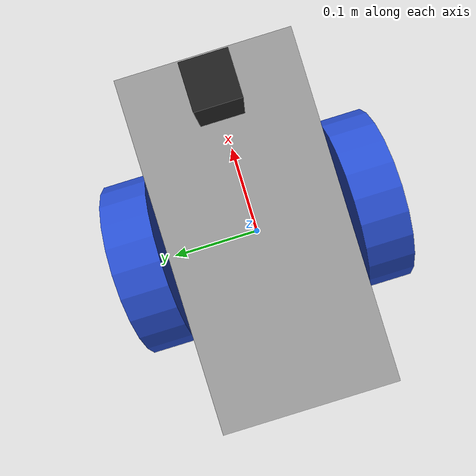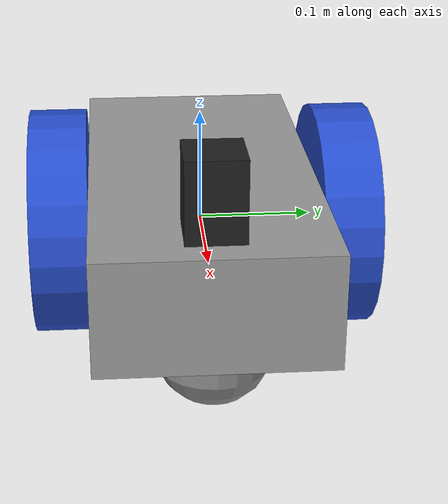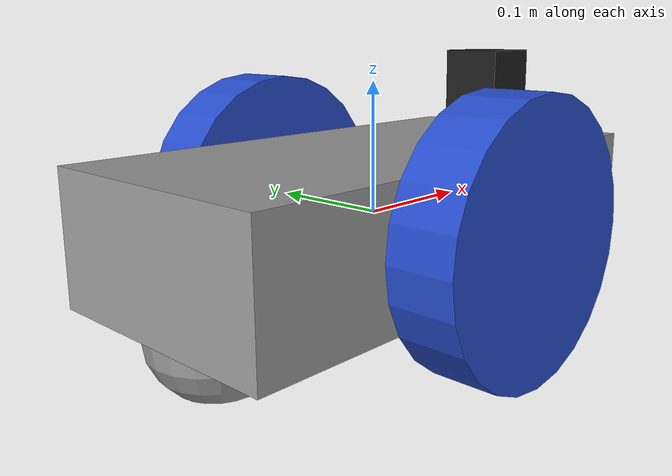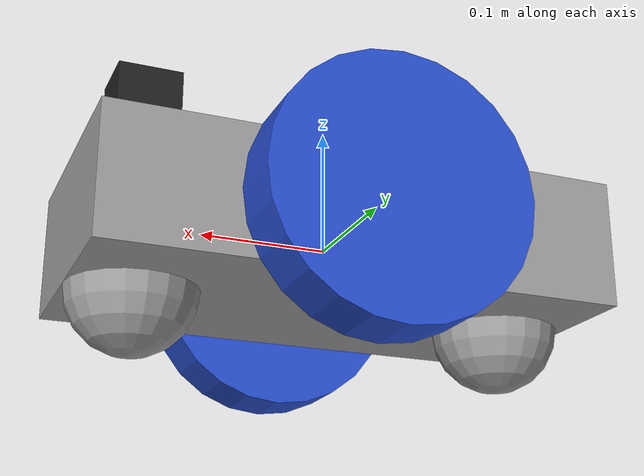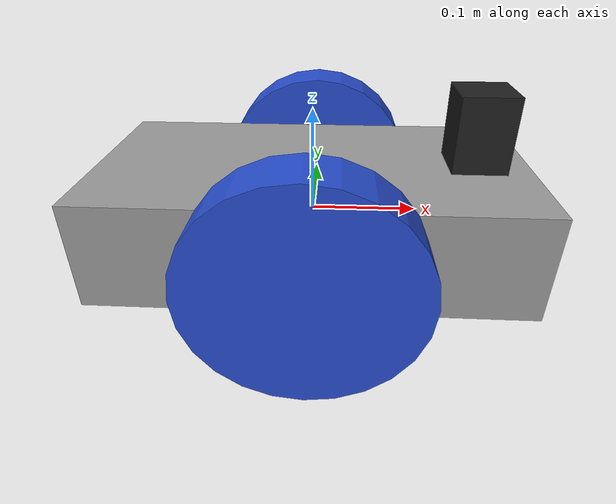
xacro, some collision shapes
<?xml version="1.0" encoding="UTF-8"?>
<robot name="diff_drive_robot" xmlns:xacro="http://www.ros.org/wiki/xacro">

<xacro:include filename="$(find diff_drive_robot_description)/urdf/material.xacro"/>
<xacro:include filename="$(find diff_drive_robot_description)/urdf/macro.xacro"/>

<!-- Footprint -->
<link name="robot_footprint"/>

<!-- Chassis -->
<link name="base_link">
  <inertial>
    <origin xyz="0 0 0" rpy="0 0 0"/>
    <mass value="15"/>
    <xacro:box_inertia mass="15" width="0.4" depth="0.2" height="0.1"/>
  </inertial>
  <visual>
    <origin xyz="0 0 0" rpy="0 0 0"/>
    <geometry>
      <box size="0.4 0.2 0.1"/>
    </geometry>
    <material name="grey"/>
  </visual>
  <collision>
    <origin xyz="0 0 0" rpy="0 0 0"/>
    <geometry>
      <box size="0.4 0.2 0.1"/>
    </geometry>
  </collision>
</link>
<gazebo reference="base_link">
  <visual>
    <material>
      <xacro:gmaterial color="grey"/>
    </material>
  </visual>
</gazebo>
<joint name="robot_footprint_base_joint" type="fixed">
  <parent link="robot_footprint"/>
  <child link="base_link"/>
</joint>

<!-- Front Caster -->
<link name="front_caster_link">
  <inertial>
    <origin xyz="0 0 0" rpy="0 0 0"/>
    <mass value="0.2"/>
    <xacro:sphere_inertia mass="0.2" radius="0.05"/>
  </inertial>
  <visual>
    <origin xyz="0 0 0" rpy="0 0 0"/>
    <geometry>
      <sphere radius="0.05"/>
    </geometry>
    <material name="grey"/>
  </visual>
  <collision>
    <origin xyz="0 0 0" rpy="0 0 0"/>
    <geometry>
      <sphere radius="0.05"/>
    </geometry>
  </collision>
</link>
<gazebo reference="front_caster_link">
  <kp value="1000000"/>
  <kd value="1"/>
  <mu1 value="0"/>
  <mu2 value="0"/>
  <visual>
    <material>
      <xacro:gmaterial color="grey"/>
    </material>
  </visual>
</gazebo>
<joint name="base_front_caster_joint" type="fixed">
  <origin xyz="0.15 0 -0.05" rpy="0 0 0"/>
  <parent link="base_link"/>
  <child link="front_caster_link"/>
</joint>

<!-- Rear Caster -->
<link name="rear_caster_link">
  <inertial>
    <origin xyz="0 0 0" rpy="0 0 0"/>
    <mass value="0.2"/>
    <xacro:sphere_inertia mass="0.2" radius="0.05"/>
  </inertial>
  <visual>
    <origin xyz="0 0 0" rpy="0 0 0"/>
    <geometry>
      <sphere radius="0.05"/>
    </geometry>
    <material name="grey"/>
  </visual>
  <collision>
    <origin xyz="0 0 0" rpy="0 0 0"/>
    <geometry>
      <sphere radius="0.05"/>
    </geometry>
  </collision>
</link>
<gazebo reference="rear_caster_link">
  <kp value="1000000"/>
  <kd value="1"/>
  <mu1 value="0"/>
  <mu2 value="0"/>
  <visual>
    <material>
      <xacro:gmaterial color="grey"/>
    </material>
  </visual>
</gazebo>
<joint name="base_rear_caster_joint" type="fixed">
  <origin xyz="-0.15 0 -0.05" rpy="0 0 0"/>
  <parent link="base_link"/>
  <child link="rear_caster_link"/>
</joint>

<!-- Left Wheel -->
<link name="left_wheel_link">
  <inertial>
    <origin xyz="0 0 0" rpy="${pi/2} 0 0"/>
    <mass value="5"/>
    <xacro:cylinder_inertia mass="5" length="0.05" radius="0.1"/>
  </inertial>
  <visual>
    <origin xyz="0 0 0" rpy="0 0 0"/>
    <geometry>
      <cylinder length="0.05" radius="0.1"/>
    </geometry>
    <material name="blue"/>
  </visual>
  <collision>
    <origin xyz="0 0 0" rpy="0 0 0"/>
    <geometry>
      <cylinder length="0.05" radius="0.1"/>
    </geometry>
  </collision>
</link>
<gazebo reference="left_wheel_link">
  <visual>
    <material>
      <xacro:gmaterial color="blue"/>
    </material>
  </visual>
</gazebo>
<joint name="base_left_wheel_joint" type="continuous">
  <origin xyz="0 0.125 0" rpy="0 ${pi/2} ${pi/2}"/>
  <parent link="base_link"/>
  <child link="left_wheel_link"/>
  <axis xyz="0 0 1" rpy="0 0 0"/>
  <limit effort="10000" velocity="1000"/>
  <joint_properties damping="1.0" friction="1.0"/>
</joint>

<!-- Right Wheel -->
<link name="right_wheel_link">
  <inertial>
    <origin xyz="0 0 0" rpy="${pi/2} 0 0"/>
    <mass value="5"/>
    <xacro:cylinder_inertia mass="5" length="0.05" radius="0.1"/>
  </inertial>
  <visual>
    <origin xyz="0 0 0" rpy="0 0 0"/>
    <geometry>
      <cylinder length="0.05" radius="0.1"/>
    </geometry>
    <material name="blue"/>
  </visual>
  <collision>
    <origin xyz="0 0 0" rpy="0 0 0"/>
    <geometry>
      <cylinder length="0.05" radius="0.1"/>
    </geometry>
  </collision>
</link>
<gazebo reference="right_wheel_link">
  <visual>
    <material>
      <xacro:gmaterial color="blue"/>
    </material>
  </visual>
</gazebo>
<joint name="base_right_wheel_joint" type="continuous">
  <origin xyz="0 -0.125 0" rpy="0 ${pi/2} ${pi/2}"/>
  <parent link="base_link"/>
  <child link="right_wheel_link"/>
  <axis xyz="0 0 1" rpy="0 0 0"/>
  <limit effort="10000" velocity="1000"/>
  <joint_properties damping="1.0" friction="1.0"/>
</joint>

<!-- Laser -->
<link name="laser_link">
  <inertial>
    <origin xyz="0 0 0" rpy=" 0 0 0"/>
    <mass value="0.27"/>
    <xacro:box_inertia mass="0.27" width="0.05" depth="0.05" height="0.07"/>
  </inertial>
  <visual>
    <origin xyz="0 0 0" rpy=" 0 0 0"/>
    <geometry>
      <mesh filename="package://diff_drive_robot_description/meshes/hokuyo.dae"/>
    </geometry>
    <material name="black"/>
  </visual>
  <collision>
    <origin xyz="0 0 0" rpy="0 0 0"/>
    <geometry>
      <box size="0.05 0.05 0.07"/>
    </geometry>
  </collision>
</link>
<gazebo reference="laser_link">
  <visual>
    <material>
      <xacro:gmaterial color="black"/>
    </material>
  </visual>
</gazebo>
<joint name="laser_link" type="fixed">
  <origin xyz="0.15 0 0.085" rpy="0 0 0"/>
  <parent link="base_link"/>
  <child link="laser_link"/>
</joint>
<gazebo reference="laser_link">
    <sensor type="ray" name="head_hokuyo_sensor">
    <pose>0 0 0 0 0 0</pose>
    <visualize>false</visualize>
    <update_rate>40</update_rate>
    <ray>
      <scan>
        <horizontal>
          <samples>720</samples>
          <resolution>1</resolution>
          <min_angle>-1.570796</min_angle>
          <max_angle>1.570796</max_angle>
        </horizontal>
      </scan>
      <range>
        <min>0.10</min>
        <max>30.0</max>
        <resolution>0.01</resolution>
      </range>
      <noise>
        <type>gaussian</type>
        <mean>0.0</mean>
        <stddev>0.01</stddev>
      </noise>
    </ray>
    <plugin name="gazebo_ros_head_hokuyo_controller" filename="libgazebo_ros_laser.so">
      <topicName>/diff_drive_robot/laser_scan</topicName>
      <frameName>laser_link</frameName>
    </plugin>
  </sensor>
</gazebo>

</robot>

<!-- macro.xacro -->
<robot xmlns:xacro="http://www.ros.org/wiki/xacro">

<xacro:macro name="box_inertia" params="mass width depth height">
  <inertia
    ixx="${1/12 * mass * (depth**2 + height**2)}" ixy="0" ixz="0"
    iyy="${1/12 * mass * (width**2 + height**2)}" iyz="0"
    izz="${1/12 * mass * (width**2 + depth**2)}"/>
</xacro:macro>

<xacro:macro name="cylinder_inertia" params="mass radius length">
  <inertia
    ixx="${1/12 * mass * (3 * radius**2 + length**2)}" ixy="0" ixz="0"
    iyy="${1/2 * mass * radius**2}" iyz="0"
    izz="${1/12 * mass * (3 * radius**2 + length**2)}"/>
</xacro:macro>

<xacro:macro name="sphere_inertia" params="mass radius">
  <inertia
    ixx="${2/5 * mass * radius**2}" ixy="0" ixz="0"
    iyy="${2/5 * mass * radius**2}" iyz="0"
    izz="${2/5 * mass * radius**2}"/>
</xacro:macro>

</robot>
